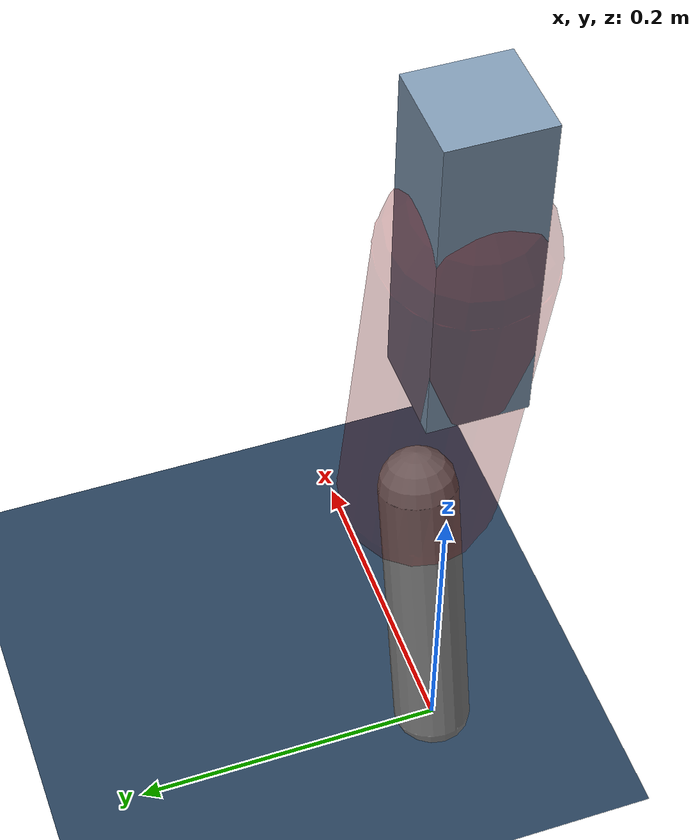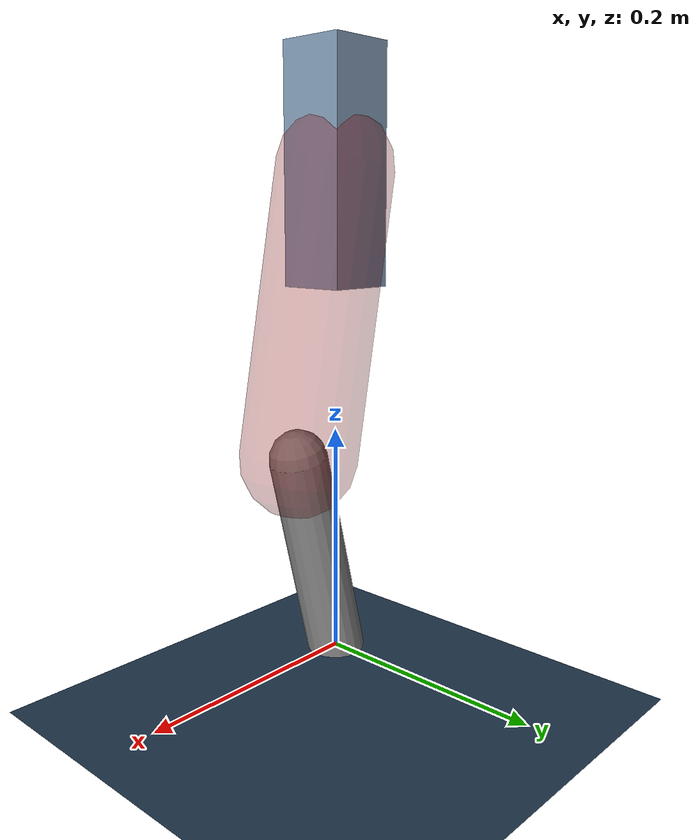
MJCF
<mujoco model="Hopper2D">
	<compiler inertiafromgeom="true" angle="radian" />
	<option timestep="0.001" integrator="implicit" cone="elliptic" solver="Newton" tolerance="1e-10" />

	<default>
		<geom contype="1" conaffinity="1" condim="3" friction="2 0.005 0.0001" solref="0.005 1" />
		<joint limited="true" damping="0.1" />
	</default>

	<asset>
		<texture name="skybox" type="skybox" builtin="gradient" rgb1=".4 .6 .8" rgb2="0 0 0" width="800" height="800" />
		<texture name="grid" type="2d" builtin="checker" rgb1=".1 .2 .3" rgb2=".2 .3 .4" width="300" height="300" mark="edge" markrgb=".2 .3 .4" />
		<material name="ground" texture="grid" texrepeat="1 1" texuniform="true" reflectance="0.1" />
		<material name="leg" rgba="0.5 0.6 0.7 1" />
	</asset>

	<worldbody>

		<geom name="floor" type="plane" size="5 5 0.25" material="ground" />

		<light directional="false" diffuse="0.8 0.8 0.8" specular="0.3 0.3 0.3" pos="0 0 2" dir="0 0 -1" />
		<light mode="targetbodycom" target="base" directional="false" diffuse="0.8 0.8 0.8" specular="0.3 0.3 0.3" pos="0 0 2" dir="0 0 -1" />

		<camera name="fixed" pos="0 -2 1" xyaxes="1 0 0 0 0 1" />
		<camera name="tracking" mode="trackcom" pos="0 -3 1" />

		<body name="root" pos="0 0 0.42474560173563103">
			<joint name="slide_x" type="slide" axis="1 0 0" range="-100 100" />
			<joint name="slide_z" type="slide" axis="0 0 1" range="0 10" />

			<body name="base" pos="0 0 0">
				<geom name="torso" type="box" size="0.03 0.03 0.1" mass="1.256" material="leg" />

				<body name="link1" pos="0 0 0" euler="0 1.3833387387365577 0">
					<joint type="hinge" axis="0 -1 0" pos="0 0 0" name="hinge1" limited="true" range="-3.14 3.14" stiffness="0" damping="0.1" />
					<geom name="thigh" type="capsule" fromto="0 0 0 0.24639927200566672 0 0" size="0.05" rgba="0.5 0 0 0.3" mass="0.8470381072147335" />

					<body name="link2" pos="0.24639927200566672 0 0" euler="0 0.43374267677012196 0">
						<joint type="hinge" axis="0 -1 0" pos="0 0 0" name="hinge2" limited="true" range="-3.14 3.14" stiffness="0" damping="0.1" />
						<geom name="shank" type="capsule" fromto="0 0 0 0.18834632972996435 0 0" size="0.025" mass="0.3910116967569679" />

					</body>
				</body>
			</body>
		</body>
	</worldbody>

	<actuator>
		<motor name="torque1" joint="hinge1" ctrlrange="-19.95987106648204 19.95987106648204" ctrllimited="true" gear="1" />
		<motor name="torque2" joint="hinge2" ctrlrange="-16.367539663179077 16.367539663179077" ctrllimited="true" gear="1" />
	</actuator>
</mujoco>
